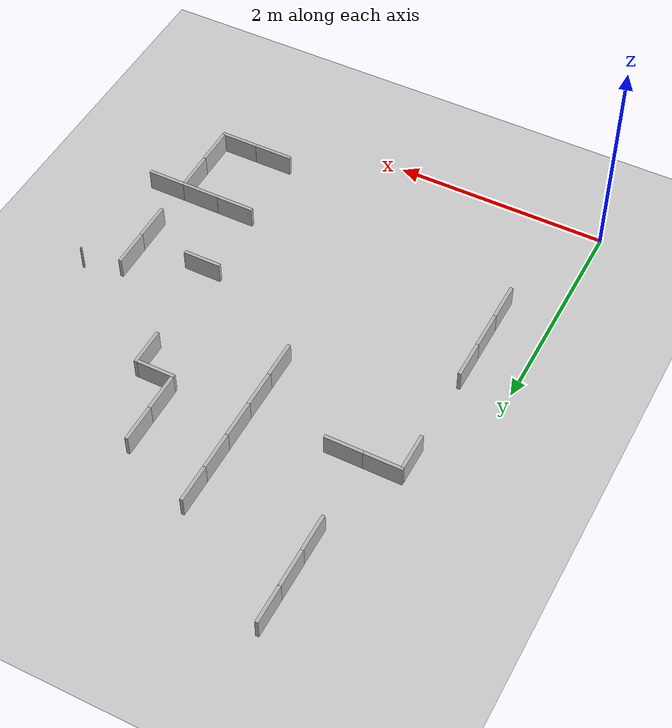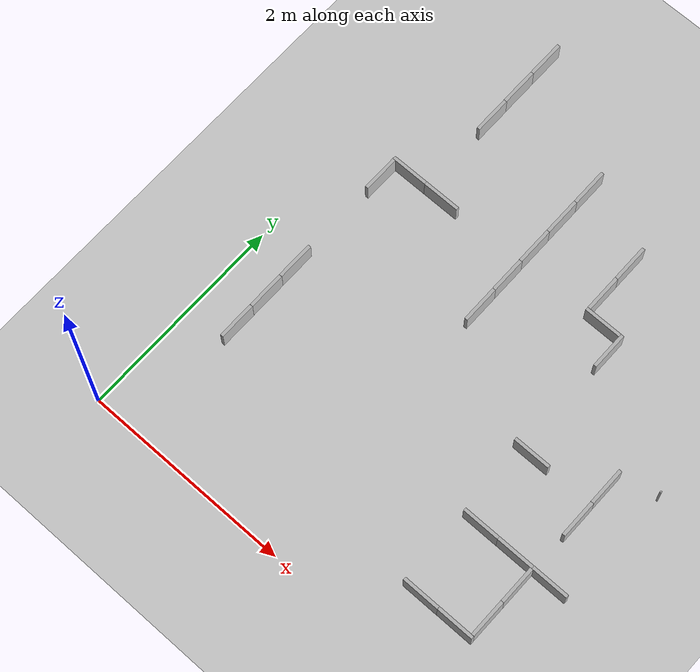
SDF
<sdf version="1.6">
 <world name="base">
  <include><uri>model://sun</uri></include>
  <include><uri>model://ground_plane</uri></include>
  <model name="k404">
   <link name="296_link">
    <collision name="collision_296">
     <pose>3.9989340076037627 2.427001194246778 0 0 -0 0</pose>
     <geometry><box><size>0.015 0.015 0.50</size></box></geometry>
    </collision>
    <visual name="visual_296">
     <pose>3.9989340076037627 2.427001194246778 0 0 -0 0</pose>
     <geometry><box><size>0.015 0.015 0.50</size></box></geometry>
    </visual>
   </link>
   <static>true</static>
  </model>
  <model name="Placa1">
   <pose>3.80692 1.2774 0 0 -0 1.57</pose>
   <static>1</static>
   <link name="link">
    <collision name="collision"><geometry><box><size>0.031694 0.360886 0.40006</size></box></geometry></collision>
    <visual name="visual"><geometry><box><size>0.031694 0.360886 0.40006</size></box></geometry></visual>
   </link>
  </model>
  <model name="Placa2">
   <pose>3.08648 1.27706 0 0 -0 1.57</pose>
   <static>1</static>
   <link name="link">
    <collision name="collision"><geometry><box><size>0.031694 0.360886 0.40006</size></box></geometry></collision>
    <visual name="visual"><geometry><box><size>0.031694 0.360886 0.40006</size></box></geometry></visual>
   </link>
  </model>
  <model name="Placa3">
   <pose>3.44758 1.27708 0 0 -0 1.57</pose>
   <static>1</static>
   <link name="link">
    <collision name="collision"><geometry><box><size>0.031694 0.360886 0.40006</size></box></geometry></collision>
    <visual name="visual"><geometry><box><size>0.031694 0.360886 0.40006</size></box></geometry></visual>
   </link>
  </model>
  <model name="Placa4">
   <pose>3.463822 0.526993 0 0 -0 1.57</pose>
   <static>1</static>
   <link name="link">
    <collision name="collision"><geometry><box><size>0.031694 0.360886 0.40006</size></box></geometry></collision>
    <visual name="visual"><geometry><box><size>0.031694 0.360886 0.40006</size></box></geometry></visual>
   </link>
  </model>
  <model name="Placa5">
   <pose>3.10234 0.526452 0 0 -0 1.57</pose>
   <static>1</static>
   <link name="link">
    <collision name="collision"><geometry><box><size>0.031694 0.360886 0.40006</size></box></geometry></collision>
    <visual name="visual"><geometry><box><size>0.031694 0.360886 0.40006</size></box></geometry></visual>
   </link>
  </model>
  <model name="Placa6">
   <pose>3.00567 2.00183 0 0 -0 1.57</pose>
   <static>1</static>
   <link name="link">
    <collision name="collision"><geometry><box><size>0.031694 0.360886 0.40006</size></box></geometry></collision>
    <visual name="visual"><geometry><box><size>0.031694 0.360886 0.40006</size></box></geometry></visual>
   </link>
  </model>
  <model name="Placa7">
   <pose>0.427226 1.59754 0 0 -0 0</pose>
   <static>1</static>
   <link name="link">
    <collision name="collision"><geometry><box><size>0.031694 0.360886 0.40006</size></box></geometry></collision>
    <visual name="visual"><geometry><box><size>0.031694 0.360886 0.40006</size></box></geometry></visual>
   </link>
  </model>
  <model name="Placa8">
   <pose>0.590901 3.23044 0 0 -0 1.57</pose>
   <static>1</static>
   <link name="link">
    <collision name="collision"><geometry><box><size>0.031694 0.360886 0.40006</size></box></geometry></collision>
    <visual name="visual"><geometry><box><size>0.031694 0.360886 0.40006</size></box></geometry></visual>
   </link>
  </model>
  <model name="Placa9">
   <pose>0.952624 3.23037 0 0 -0 1.57</pose>
   <static>1</static>
   <link name="link">
    <collision name="collision"><geometry><box><size>0.031694 0.360886 0.40006</size></box></geometry></collision>
    <visual name="visual"><geometry><box><size>0.031694 0.360886 0.40006</size></box></geometry></visual>
   </link>
  </model>
  <model name="Placa10">
   <pose>2.71226 3.26281 0 0 -0 1.57</pose>
   <static>1</static>
   <link name="link">
    <collision name="collision"><geometry><box><size>0.031694 0.360886 0.40006</size></box></geometry></collision>
    <visual name="visual"><geometry><box><size>0.031694 0.360886 0.40006</size></box></geometry></visual>
   </link>
  </model>
  <model name="Placa11">
   <pose>0.42662 1.95843 0 0 -0 0</pose>
   <static>1</static>
   <link name="link">
    <collision name="collision"><geometry><box><size>0.031694 0.360886 0.40006</size></box></geometry></collision>
    <visual name="visual"><geometry><box><size>0.031694 0.360886 0.40006</size></box></geometry></visual>
   </link>
  </model>
  <model name="Placa12">
   <pose>0.425298 3.04244 0 0 -0 0</pose>
   <static>1</static>
   <link name="link">
    <collision name="collision"><geometry><box><size>0.031694 0.360886 0.40006</size></box></geometry></collision>
    <visual name="visual"><geometry><box><size>0.031694 0.360886 0.40006</size></box></geometry></visual>
   </link>
  </model>
  <model name="Placa13">
   <pose>0.427425 1.23641 0 0 -0 0</pose>
   <static>1</static>
   <link name="link">
    <collision name="collision"><geometry><box><size>0.031694 0.360886 0.40006</size></box></geometry></collision>
    <visual name="visual"><geometry><box><size>0.031694 0.360886 0.40006</size></box></geometry></visual>
   </link>
  </model>
  <model name="Placa14">
   <pose>1.8406 3.7661 0 0 -0 0</pose>
   <static>1</static>
   <link name="link">
    <collision name="collision"><geometry><box><size>0.031694 0.360886 0.40006</size></box></geometry></collision>
    <visual name="visual"><geometry><box><size>0.031694 0.360886 0.40006</size></box></geometry></visual>
   </link>
  </model>
  <model name="Placa15">
   <pose>1.84017 4.12777 0 0 -0 0</pose>
   <static>1</static>
   <link name="link">
    <collision name="collision"><geometry><box><size>0.031694 0.360886 0.40006</size></box></geometry></collision>
    <visual name="visual"><geometry><box><size>0.031694 0.360886 0.40006</size></box></geometry></visual>
   </link>
  </model>
  <model name="Placa16">
   <pose>2.90837 3.09687 0 0 -0 0</pose>
   <static>1</static>
   <link name="link">
    <collision name="collision"><geometry><box><size>0.031694 0.360886 0.40006</size></box></geometry></collision>
    <visual name="visual"><geometry><box><size>0.031694 0.360886 0.40006</size></box></geometry></visual>
   </link>
  </model>
  <model name="Placa17">
   <pose>3.63866 2.18269 0 0 -0 0</pose>
   <static>1</static>
   <link name="link">
    <collision name="collision"><geometry><box><size>0.031694 0.360886 0.40006</size></box></geometry></collision>
    <visual name="visual"><geometry><box><size>0.031694 0.360886 0.40006</size></box></geometry></visual>
   </link>
  </model>
  <model name="Placa18">
   <pose>3.64011 1.82321 0 0 -0 0</pose>
   <static>1</static>
   <link name="link">
    <collision name="collision"><geometry><box><size>0.031694 0.360886 0.40006</size></box></geometry></collision>
    <visual name="visual"><geometry><box><size>0.031694 0.360886 0.40006</size></box></geometry></visual>
   </link>
  </model>
  <model name="Placa19">
   <pose>3.62804 1.08185 0 0 -0 0</pose>
   <static>1</static>
   <link name="link">
    <collision name="collision"><geometry><box><size>0.031694 0.360886 0.40006</size></box></geometry></collision>
    <visual name="visual"><geometry><box><size>0.031694 0.360886 0.40006</size></box></geometry></visual>
   </link>
  </model>
  <model name="Placa20">
   <pose>3.62826 0.721652 0.005089 0 -0 0</pose>
   <static>1</static>
   <link name="link">
    <collision name="collision"><geometry><box><size>0.031694 0.360886 0.40006</size></box></geometry></collision>
    <visual name="visual"><geometry><box><size>0.031694 0.360886 0.40006</size></box></geometry></visual>
   </link>
  </model>
  <model name="Placa21">
   <pose>0.77105 4.45754 0 0 -0 0</pose>
   <static>1</static>
   <link name="link">
    <collision name="collision"><geometry><box><size>0.031694 0.360886 0.40006</size></box></geometry></collision>
    <visual name="visual"><geometry><box><size>0.031694 0.360886 0.40006</size></box></geometry></visual>
   </link>
  </model>
  <model name="Placa22">
   <pose>0.772762 4.09807 0 0 -0 0</pose>
   <static>1</static>
   <link name="link">
    <collision name="collision"><geometry><box><size>0.031694 0.360886 0.40006</size></box></geometry></collision>
    <visual name="visual"><geometry><box><size>0.031694 0.360886 0.40006</size></box></geometry></visual>
   </link>
  </model>
  <model name="Placa23">
   <pose>2.54622 3.45817 0 0 -0 0</pose>
   <static>1</static>
   <link name="link">
    <collision name="collision"><geometry><box><size>0.031694 0.360886 0.40006</size></box></geometry></collision>
    <visual name="visual"><geometry><box><size>0.031694 0.360886 0.40006</size></box></geometry></visual>
   </link>
  </model>
  <model name="Placa24">
   <pose>2.54547 3.81898 0 0 -0 0</pose>
   <static>1</static>
   <link name="link">
    <collision name="collision"><geometry><box><size>0.031694 0.360886 0.40006</size></box></geometry></collision>
    <visual name="visual"><geometry><box><size>0.031694 0.360886 0.40006</size></box></geometry></visual>
   </link>
  </model>
  <model name="Placa25">
   <pose>0.770965 4.81852 0 0 -0 0</pose>
   <static>1</static>
   <link name="link">
    <collision name="collision"><geometry><box><size>0.031694 0.360886 0.40006</size></box></geometry></collision>
    <visual name="visual"><geometry><box><size>0.031694 0.360886 0.40006</size></box></geometry></visual>
   </link>
  </model>
  <model name="Placa26">
   <pose>1.84115 3.40485 0 0 -0 0</pose>
   <static>1</static>
   <link name="link">
    <collision name="collision"><geometry><box><size>0.031694 0.360886 0.40006</size></box></geometry></collision>
    <visual name="visual"><geometry><box><size>0.031694 0.360886 0.40006</size></box></geometry></visual>
   </link>
  </model>
  <model name="Placa27">
   <pose>1.8425 3.04727 0 0 -0 0</pose>
   <static>1</static>
   <link name="link">
    <collision name="collision"><geometry><box><size>0.031694 0.360886 0.40006</size></box></geometry></collision>
    <visual name="visual"><geometry><box><size>0.031694 0.360886 0.40006</size></box></geometry></visual>
   </link>
  </model>
  <model name="Placa28">
   <pose>1.84372 2.70004 0 0 -0 0</pose>
   <static>1</static>
   <link name="link">
    <collision name="collision"><geometry><box><size>0.031694 0.360886 0.40006</size></box></geometry></collision>
    <visual name="visual"><geometry><box><size>0.031694 0.360886 0.40006</size></box></geometry></visual>
   </link>
  </model>
 </world>
</sdf>
